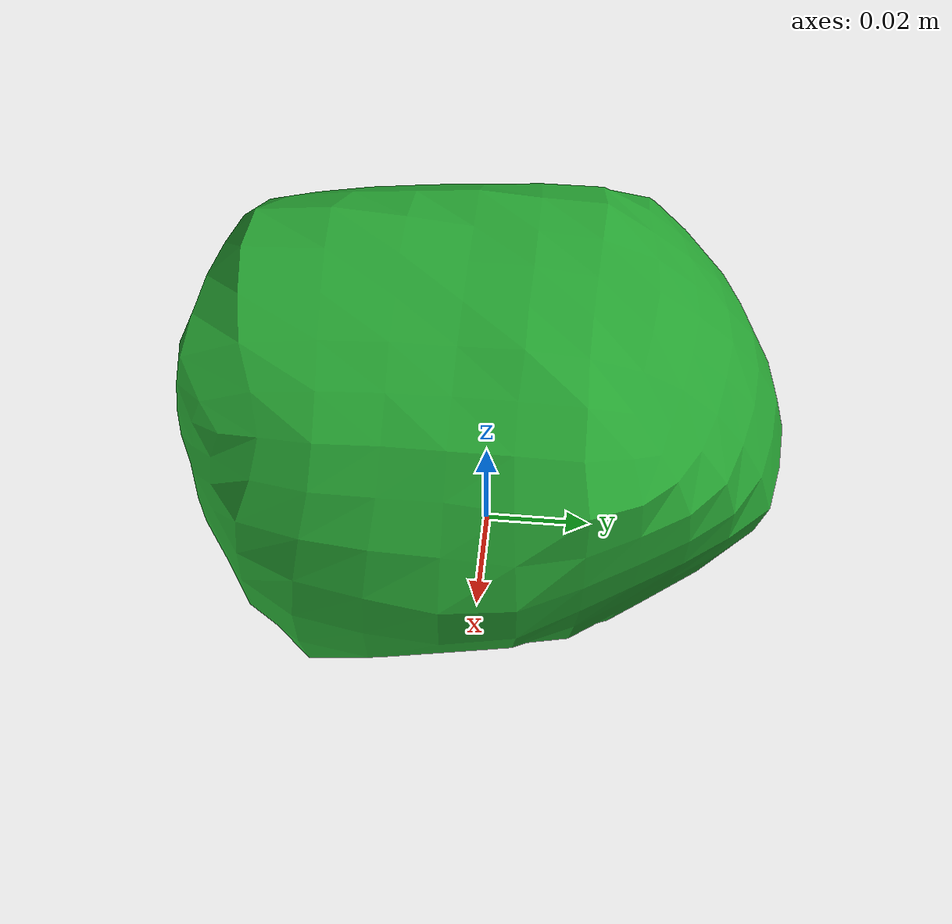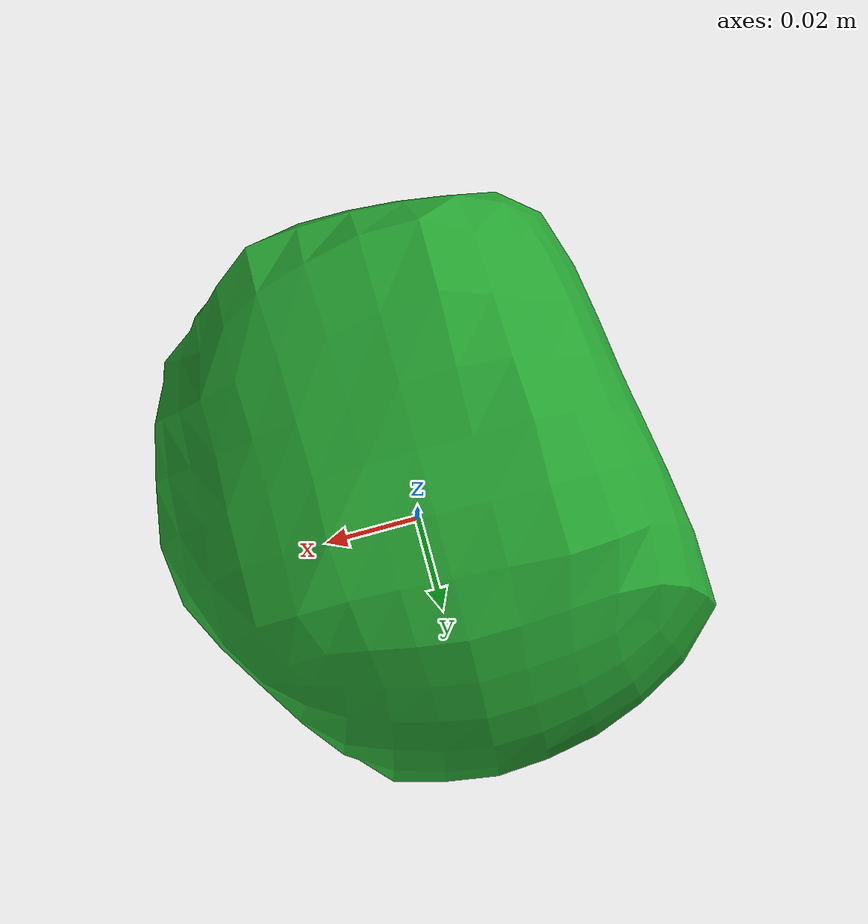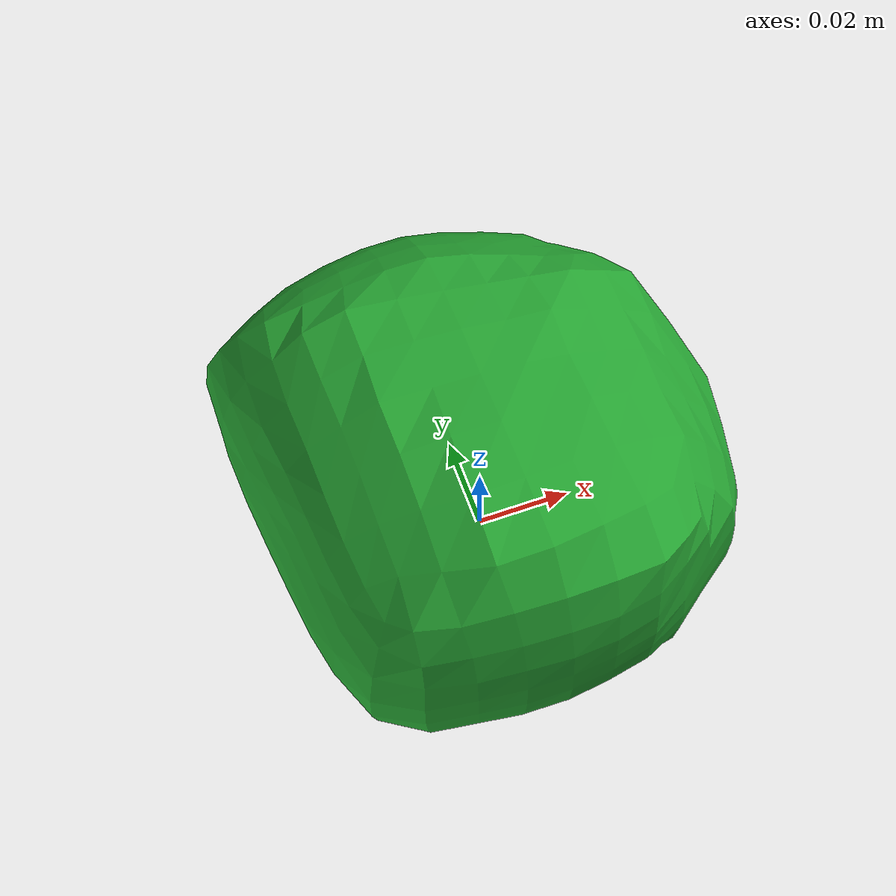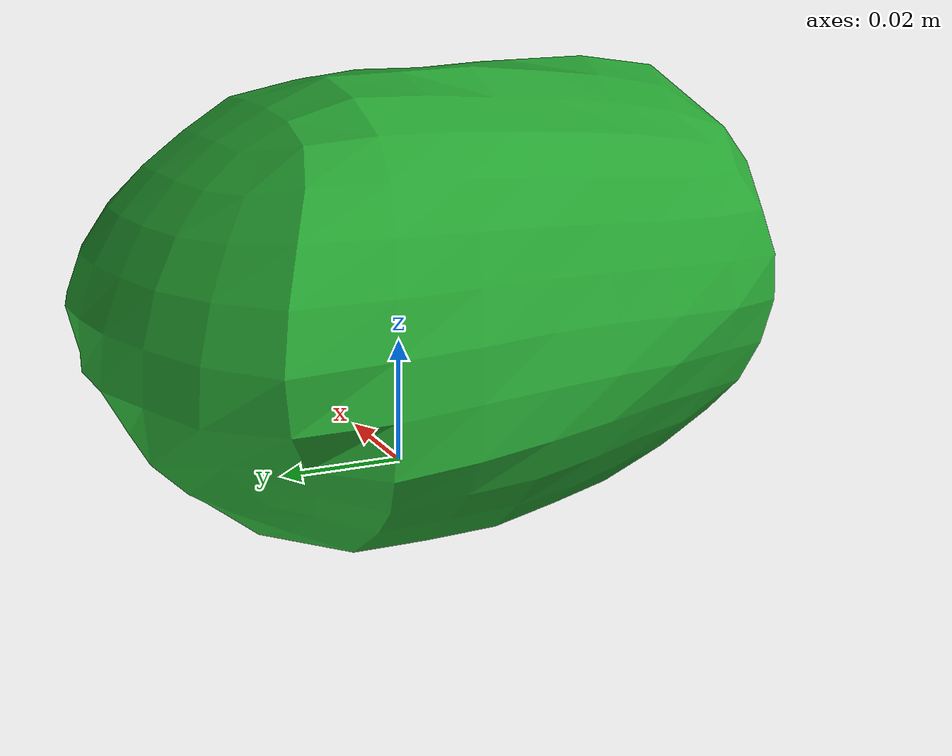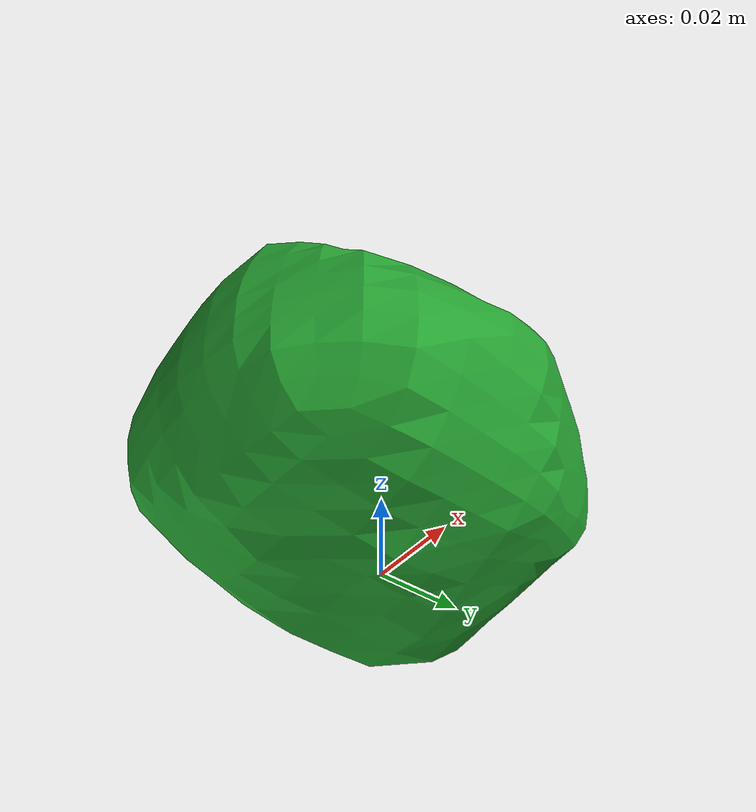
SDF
<?xml version='1.0'?>
<sdf version='1.4'>
  <model name="my_rockgreen">
    <static>0</static>
        <link name='link'>
        <pose>0 0 0 0 0 0</pose>

        <inertial>
                <mass>0.3</mass>
              </inertial>

        <visual name='visual'>
              <pose>0 0 .031 0 0 0</pose>
              <geometry>
                <mesh>
                  <uri>model://my_rock02/meshes/model.dae</uri>
                  <scale>0.06 0.06 0.06</scale>
                </mesh>
              </geometry>
              <material>
                <script>
		<uri>file://media/materials/scripts/gazbo.material</uri>
		<name>Gazebo/Green</name>
		</script>
              </material>
            </visual>

            <collision name='collision'>
          <geometry>
            <mesh>
               <uri>model://my_rock02/meshes/model.dae</uri>
               <scale>0.06 0.06 0.01</scale>
             </mesh>
          </geometry>
          <max_contacts>10</max_contacts>
          <surface>
            <bounce>
              <restitution_coefficient>0.00001</restitution_coefficient>
              <threshold>0</threshold>
            </bounce>
            <friction>
              <ode/>
            </friction>
            <contact>
              <ode>
                <max_vel>10</max_vel>
              </ode>
            </contact>
          </surface>
        </collision>
        <velocity_decay>
          <linear>0</linear>
          <angular>0</angular>
        </velocity_decay>
        <self_collide>0</self_collide>
        <kinematic>0</kinematic>
        <gravity>1</gravity>

          </link>
        </model>
</sdf>
